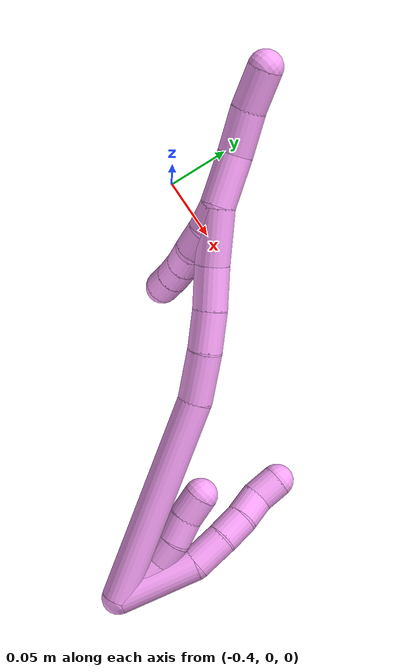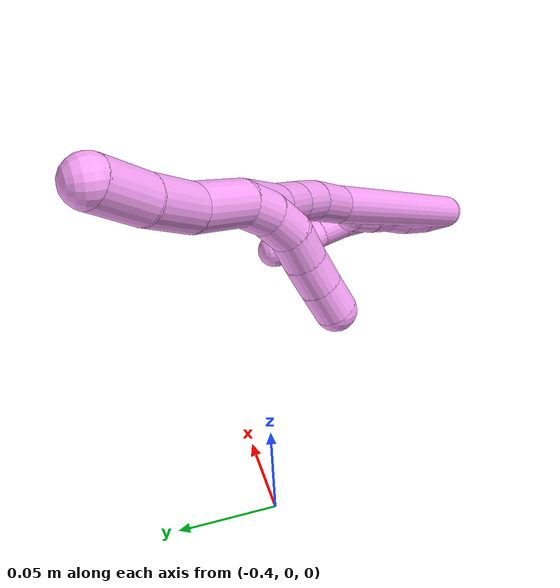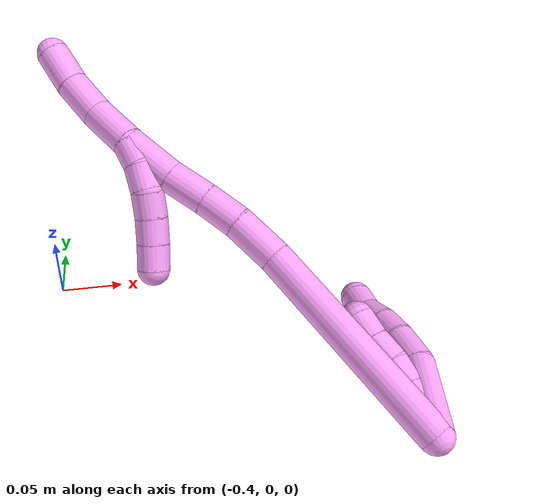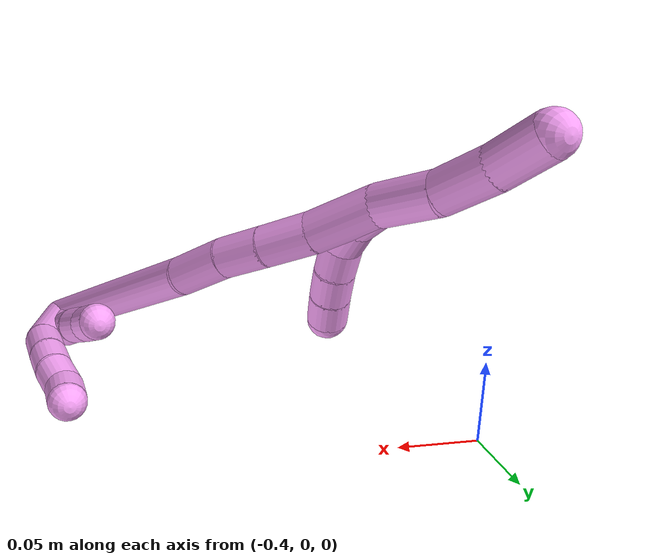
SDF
<sdf version="1.7">
 <world name="default">
  <model name="4">
   <static>0</static>
   <link name="4">
    <collision name="collision-cylinder-e_1_2_8">
     <pose>0.002928 -0.01005 -0.028716 2.80493 0.095944 0.550668</pose>
     <geometry><cylinder><radius>0.0125</radius><length>0.061129</length></cylinder></geometry>
     <surface>
      <friction><ode><mu>1.16</mu><mu2>1.16</mu2><slip1>0</slip1><slip2>0</slip2></ode></friction>
      <contact><ode><kp>1e+06</kp><kd>1</kd><max_vel>0</max_vel><min_depth>0.001</min_depth></ode></contact>
     </surface>
    </collision>
    <visual name="visual-cylinder-e_1_2_8">
     <pose>0.002928 -0.01005 -0.028716 2.80493 0.095944 0.550668</pose>
     <geometry><cylinder><radius>0.0125</radius><length>0.061129</length></cylinder></geometry>
     <material><ambient>1 0.65098 0.996078 1</ambient></material>
    </visual>
    <collision name="collision-cylinder-e_2_8_9">
     <pose>0.004765 -0.020709 -0.071097 3.09706 -0.079573 -2.12145</pose>
     <geometry><cylinder><radius>0.0125</radius><length>0.027445</length></cylinder></geometry>
     <surface>
      <friction><ode><mu>1.16</mu><mu2>1.16</mu2><slip1>0</slip1><slip2>0</slip2></ode></friction>
      <contact><ode><kp>1e+06</kp><kd>1</kd><max_vel>0</max_vel><min_depth>0.001</min_depth></ode></contact>
     </surface>
    </collision>
    <visual name="visual-cylinder-e_2_8_9">
     <pose>0.004765 -0.020709 -0.071097 3.09706 -0.079573 -2.12145</pose>
     <geometry><cylinder><radius>0.0125</radius><length>0.027445</length></cylinder></geometry>
     <material><ambient>1 0.65098 0.996078 1</ambient></material>
    </visual>
    <collision name="collision-cylinder-e_3_9_10">
     <pose>0.001495 -0.021744 -0.095071 3.10033 -0.208218 -2.75163</pose>
     <geometry><cylinder><radius>0.0125</radius><length>0.02109</length></cylinder></geometry>
     <surface>
      <friction><ode><mu>1.16</mu><mu2>1.16</mu2><slip1>0</slip1><slip2>0</slip2></ode></friction>
      <contact><ode><kp>1e+06</kp><kd>1</kd><max_vel>0</max_vel><min_depth>0.001</min_depth></ode></contact>
     </surface>
    </collision>
    <visual name="visual-cylinder-e_3_9_10">
     <pose>0.001495 -0.021744 -0.095071 3.10033 -0.208218 -2.75163</pose>
     <geometry><cylinder><radius>0.0125</radius><length>0.02109</length></cylinder></geometry>
     <material><ambient>1 0.65098 0.996078 1</ambient></material>
    </visual>
    <collision name="collision-cylinder-e_4_10_11">
     <pose>-0.004268 -0.021785 -0.114782 -3.10078 -0.363745 2.92053</pose>
     <geometry><cylinder><radius>0.0125</radius><length>0.020138</length></cylinder></geometry>
     <surface>
      <friction><ode><mu>1.16</mu><mu2>1.16</mu2><slip1>0</slip1><slip2>0</slip2></ode></friction>
      <contact><ode><kp>1e+06</kp><kd>1</kd><max_vel>0</max_vel><min_depth>0.001</min_depth></ode></contact>
     </surface>
    </collision>
    <visual name="visual-cylinder-e_4_10_11">
     <pose>-0.004268 -0.021785 -0.114782 -3.10078 -0.363745 2.92053</pose>
     <geometry><cylinder><radius>0.0125</radius><length>0.020138</length></cylinder></geometry>
     <material><ambient>1 0.65098 0.996078 1</ambient></material>
    </visual>
    <collision name="collision-cylinder-e_5_11_6">
     <pose>-0.008459 -0.022295 -0.134225 3.05283 -0.060303 -1.19314</pose>
     <geometry><cylinder><radius>0.0125</radius><length>0.020199</length></cylinder></geometry>
     <surface>
      <friction><ode><mu>1.16</mu><mu2>1.16</mu2><slip1>0</slip1><slip2>0</slip2></ode></friction>
      <contact><ode><kp>1e+06</kp><kd>1</kd><max_vel>0</max_vel><min_depth>0.001</min_depth></ode></contact>
     </surface>
    </collision>
    <visual name="visual-cylinder-e_5_11_6">
     <pose>-0.008459 -0.022295 -0.134225 3.05283 -0.060303 -1.19314</pose>
     <geometry><cylinder><radius>0.0125</radius><length>0.020199</length></cylinder></geometry>
     <material><ambient>1 0.65098 0.996078 1</ambient></material>
    </visual>
    <collision name="collision-cylinder-e_1_2_12">
     <pose>-0.000739 -0.001037 -0.009919 3.03741 -0.073924 -1.23378</pose>
     <geometry><cylinder><radius>0.0125</radius><length>0.02</length></cylinder></geometry>
     <surface>
      <friction><ode><mu>1.16</mu><mu2>1.16</mu2><slip1>0</slip1><slip2>0</slip2></ode></friction>
      <contact><ode><kp>1e+06</kp><kd>1</kd><max_vel>0</max_vel><min_depth>0.001</min_depth></ode></contact>
     </surface>
    </collision>
    <visual name="visual-cylinder-e_1_2_12">
     <pose>-0.000739 -0.001037 -0.009919 3.03741 -0.073924 -1.23378</pose>
     <geometry><cylinder><radius>0.0125</radius><length>0.02</length></cylinder></geometry>
     <material><ambient>1 0.65098 0.996078 1</ambient></material>
    </visual>
    <collision name="collision-cylinder-e_2_12_13">
     <pose>-0.00044 -0.001727 -0.029777 -3.10671 0.103871 -2.49406</pose>
     <geometry><cylinder><radius>0.0125</radius><length>0.02</length></cylinder></geometry>
     <surface>
      <friction><ode><mu>1.16</mu><mu2>1.16</mu2><slip1>0</slip1><slip2>0</slip2></ode></friction>
      <contact><ode><kp>1e+06</kp><kd>1</kd><max_vel>0</max_vel><min_depth>0.001</min_depth></ode></contact>
     </surface>
    </collision>
    <visual name="visual-cylinder-e_2_12_13">
     <pose>-0.00044 -0.001727 -0.029777 -3.10671 0.103871 -2.49406</pose>
     <geometry><cylinder><radius>0.0125</radius><length>0.02</length></cylinder></geometry>
     <material><ambient>1 0.65098 0.996078 1</ambient></material>
    </visual>
    <collision name="collision-cylinder-e_3_13_14">
     <pose>0.003185 0.001395 -0.048969 -2.85014 0.261868 -1.4626</pose>
     <geometry><cylinder><radius>0.0125</radius><length>0.02</length></cylinder></geometry>
     <surface>
      <friction><ode><mu>1.16</mu><mu2>1.16</mu2><slip1>0</slip1><slip2>0</slip2></ode></friction>
      <contact><ode><kp>1e+06</kp><kd>1</kd><max_vel>0</max_vel><min_depth>0.001</min_depth></ode></contact>
     </surface>
    </collision>
    <visual name="visual-cylinder-e_3_13_14">
     <pose>0.003185 0.001395 -0.048969 -2.85014 0.261868 -1.4626</pose>
     <geometry><cylinder><radius>0.0125</radius><length>0.02</length></cylinder></geometry>
     <material><ambient>1 0.65098 0.996078 1</ambient></material>
    </visual>
    <collision name="collision-cylinder-e_4_14_15">
     <pose>0.007025 0.007987 -0.067379 -2.74675 0.125365 -0.608111</pose>
     <geometry><cylinder><radius>0.0125</radius><length>0.02</length></cylinder></geometry>
     <surface>
      <friction><ode><mu>1.16</mu><mu2>1.16</mu2><slip1>0</slip1><slip2>0</slip2></ode></friction>
      <contact><ode><kp>1e+06</kp><kd>1</kd><max_vel>0</max_vel><min_depth>0.001</min_depth></ode></contact>
     </surface>
    </collision>
    <visual name="visual-cylinder-e_4_14_15">
     <pose>0.007025 0.007987 -0.067379 -2.74675 0.125365 -0.608111</pose>
     <geometry><cylinder><radius>0.0125</radius><length>0.02</length></cylinder></geometry>
     <material><ambient>1 0.65098 0.996078 1</ambient></material>
    </visual>
    <collision name="collision-cylinder-e_5_15_5">
     <pose>0.010372 0.014528 -0.085927 -2.85923 0.2113 -1.28204</pose>
     <geometry><cylinder><radius>0.0125</radius><length>0.02</length></cylinder></geometry>
     <surface>
      <friction><ode><mu>1.16</mu><mu2>1.16</mu2><slip1>0</slip1><slip2>0</slip2></ode></friction>
      <contact><ode><kp>1e+06</kp><kd>1</kd><max_vel>0</max_vel><min_depth>0.001</min_depth></ode></contact>
     </surface>
    </collision>
    <visual name="visual-cylinder-e_5_15_5">
     <pose>0.010372 0.014528 -0.085927 -2.85923 0.2113 -1.28204</pose>
     <geometry><cylinder><radius>0.0125</radius><length>0.02</length></cylinder></geometry>
     <material><ambient>1 0.65098 0.996078 1</ambient></material>
    </visual>
    <collision name="collision-cylinder-e_1_2_16">
     <pose>0.013739 0.037923 -0.069217 -2.64038 0.172346 -0.650926</pose>
     <geometry><cylinder><radius>0.0125</radius><length>0.160224</length></cylinder></geometry>
     <surface>
      <friction><ode><mu>1.16</mu><mu2>1.16</mu2><slip1>0</slip1><slip2>0</slip2></ode></friction>
      <contact><ode><kp>1e+06</kp><kd>1</kd><max_vel>0</max_vel><min_depth>0.001</min_depth></ode></contact>
     </surface>
    </collision>
    <visual name="visual-cylinder-e_1_2_16">
     <pose>0.013739 0.037923 -0.069217 -2.64038 0.172346 -0.650926</pose>
     <geometry><cylinder><radius>0.0125</radius><length>0.160224</length></cylinder></geometry>
     <material><ambient>1 0.65098 0.996078 1</ambient></material>
    </visual>
    <collision name="collision-cylinder-e_2_16_17">
     <pose>0.030888 0.087322 -0.152553 -2.45907 0.185293 -0.511751</pose>
     <geometry><cylinder><radius>0.0125</radius><length>0.037024</length></cylinder></geometry>
     <surface>
      <friction><ode><mu>1.16</mu><mu2>1.16</mu2><slip1>0</slip1><slip2>0</slip2></ode></friction>
      <contact><ode><kp>1e+06</kp><kd>1</kd><max_vel>0</max_vel><min_depth>0.001</min_depth></ode></contact>
     </surface>
    </collision>
    <visual name="visual-cylinder-e_2_16_17">
     <pose>0.030888 0.087322 -0.152553 -2.45907 0.185293 -0.511751</pose>
     <geometry><cylinder><radius>0.0125</radius><length>0.037024</length></cylinder></geometry>
     <material><ambient>1 0.65098 0.996078 1</ambient></material>
    </visual>
    <collision name="collision-cylinder-e_3_17_18">
     <pose>0.035301 0.108553 -0.177789 -2.42135 0.067668 -0.179298</pose>
     <geometry><cylinder><radius>0.0125</radius><length>0.029648</length></cylinder></geometry>
     <surface>
      <friction><ode><mu>1.16</mu><mu2>1.16</mu2><slip1>0</slip1><slip2>0</slip2></ode></friction>
      <contact><ode><kp>1e+06</kp><kd>1</kd><max_vel>0</max_vel><min_depth>0.001</min_depth></ode></contact>
     </surface>
    </collision>
    <visual name="visual-cylinder-e_3_17_18">
     <pose>0.035301 0.108553 -0.177789 -2.42135 0.067668 -0.179298</pose>
     <geometry><cylinder><radius>0.0125</radius><length>0.029648</length></cylinder></geometry>
     <material><ambient>1 0.65098 0.996078 1</ambient></material>
    </visual>
    <collision name="collision-cylinder-e_4_18_19">
     <pose>0.037154 0.129642 -0.200003 -2.34565 0.053619 -0.127399</pose>
     <geometry><cylinder><radius>0.0125</radius><length>0.031769</length></cylinder></geometry>
     <surface>
      <friction><ode><mu>1.16</mu><mu2>1.16</mu2><slip1>0</slip1><slip2>0</slip2></ode></friction>
      <contact><ode><kp>1e+06</kp><kd>1</kd><max_vel>0</max_vel><min_depth>0.001</min_depth></ode></contact>
     </surface>
    </collision>
    <visual name="visual-cylinder-e_4_18_19">
     <pose>0.037154 0.129642 -0.200003 -2.34565 0.053619 -0.127399</pose>
     <geometry><cylinder><radius>0.0125</radius><length>0.031769</length></cylinder></geometry>
     <material><ambient>1 0.65098 0.996078 1</ambient></material>
    </visual>
    <collision name="collision-cylinder-e_5_19_1">
     <pose>0.04121 0.155297 -0.225653 -2.36421 0.155675 -0.376396</pose>
     <geometry><cylinder><radius>0.0125</radius><length>0.041336</length></cylinder></geometry>
     <surface>
      <friction><ode><mu>1.16</mu><mu2>1.16</mu2><slip1>0</slip1><slip2>0</slip2></ode></friction>
      <contact><ode><kp>1e+06</kp><kd>1</kd><max_vel>0</max_vel><min_depth>0.001</min_depth></ode></contact>
     </surface>
    </collision>
    <visual name="visual-cylinder-e_5_19_1">
     <pose>0.04121 0.155297 -0.225653 -2.36421 0.155675 -0.376396</pose>
     <geometry><cylinder><radius>0.0125</radius><length>0.041336</length></cylinder></geometry>
     <material><ambient>1 0.65098 0.996078 1</ambient></material>
    </visual>
    <collision name="collision-cylinder-e_1_1_20">
     <pose>0.045668 0.178767 -0.256414 -2.62773 0.067219 -0.254553</pose>
     <geometry><cylinder><radius>0.0125</radius><length>0.037306</length></cylinder></geometry>
     <surface>
      <friction><ode><mu>1.16</mu><mu2>1.16</mu2><slip1>0</slip1><slip2>0</slip2></ode></friction>
      <contact><ode><kp>1e+06</kp><kd>1</kd><max_vel>0</max_vel><min_depth>0.001</min_depth></ode></contact>
     </surface>
    </collision>
    <visual name="visual-cylinder-e_1_1_20">
     <pose>0.045668 0.178767 -0.256414 -2.62773 0.067219 -0.254553</pose>
     <geometry><cylinder><radius>0.0125</radius><length>0.037306</length></cylinder></geometry>
     <material><ambient>1 0.65098 0.996078 1</ambient></material>
    </visual>
    <collision name="collision-cylinder-e_2_20_21">
     <pose>0.050842 0.19669 -0.285468 -2.54236 0.246938 -0.763991</pose>
     <geometry><cylinder><radius>0.0125</radius><length>0.032089</length></cylinder></geometry>
     <surface>
      <friction><ode><mu>1.16</mu><mu2>1.16</mu2><slip1>0</slip1><slip2>0</slip2></ode></friction>
      <contact><ode><kp>1e+06</kp><kd>1</kd><max_vel>0</max_vel><min_depth>0.001</min_depth></ode></contact>
     </surface>
    </collision>
    <visual name="visual-cylinder-e_2_20_21">
     <pose>0.050842 0.19669 -0.285468 -2.54236 0.246938 -0.763991</pose>
     <geometry><cylinder><radius>0.0125</radius><length>0.032089</length></cylinder></geometry>
     <material><ambient>1 0.65098 0.996078 1</ambient></material>
    </visual>
    <collision name="collision-cylinder-e_3_21_4">
     <pose>0.060228 0.212619 -0.31069 -2.6174 0.365078 -1.20537</pose>
     <geometry><cylinder><radius>0.0125</radius><length>0.030604</length></cylinder></geometry>
     <surface>
      <friction><ode><mu>1.16</mu><mu2>1.16</mu2><slip1>0</slip1><slip2>0</slip2></ode></friction>
      <contact><ode><kp>1e+06</kp><kd>1</kd><max_vel>0</max_vel><min_depth>0.001</min_depth></ode></contact>
     </surface>
    </collision>
    <visual name="visual-cylinder-e_3_21_4">
     <pose>0.060228 0.212619 -0.31069 -2.6174 0.365078 -1.20537</pose>
     <geometry><cylinder><radius>0.0125</radius><length>0.030604</length></cylinder></geometry>
     <material><ambient>1 0.65098 0.996078 1</ambient></material>
    </visual>
    <collision name="collision-cylinder-e_1_1_22">
     <pose>0.040288 0.16564 -0.232012 0.452015 -0.425341 -0.099221</pose>
     <geometry><cylinder><radius>0.0125</radius><length>0.02</length></cylinder></geometry>
     <surface>
      <friction><ode><mu>1.16</mu><mu2>1.16</mu2><slip1>0</slip1><slip2>0</slip2></ode></friction>
      <contact><ode><kp>1e+06</kp><kd>1</kd><max_vel>0</max_vel><min_depth>0.001</min_depth></ode></contact>
     </surface>
    </collision>
    <visual name="visual-cylinder-e_1_1_22">
     <pose>0.040288 0.16564 -0.232012 0.452015 -0.425341 -0.099221</pose>
     <geometry><cylinder><radius>0.0125</radius><length>0.02</length></cylinder></geometry>
     <material><ambient>1 0.65098 0.996078 1</ambient></material>
    </visual>
    <collision name="collision-cylinder-e_2_22_23">
     <pose>0.029845 0.158584 -0.216703 0.408215 -0.683765 -0.147052</pose>
     <geometry><cylinder><radius>0.0125</radius><length>0.02</length></cylinder></geometry>
     <surface>
      <friction><ode><mu>1.16</mu><mu2>1.16</mu2><slip1>0</slip1><slip2>0</slip2></ode></friction>
      <contact><ode><kp>1e+06</kp><kd>1</kd><max_vel>0</max_vel><min_depth>0.001</min_depth></ode></contact>
     </surface>
    </collision>
    <visual name="visual-cylinder-e_2_22_23">
     <pose>0.029845 0.158584 -0.216703 0.408215 -0.683765 -0.147052</pose>
     <geometry><cylinder><radius>0.0125</radius><length>0.02</length></cylinder></geometry>
     <material><ambient>1 0.65098 0.996078 1</ambient></material>
    </visual>
    <collision name="collision-cylinder-e_3_23_24">
     <pose>0.015279 0.152279 -0.204947 0.607728 -0.969976 -0.327528</pose>
     <geometry><cylinder><radius>0.0125</radius><length>0.02</length></cylinder></geometry>
     <surface>
      <friction><ode><mu>1.16</mu><mu2>1.16</mu2><slip1>0</slip1><slip2>0</slip2></ode></friction>
      <contact><ode><kp>1e+06</kp><kd>1</kd><max_vel>0</max_vel><min_depth>0.001</min_depth></ode></contact>
     </surface>
    </collision>
    <visual name="visual-cylinder-e_3_23_24">
     <pose>0.015279 0.152279 -0.204947 0.607728 -0.969976 -0.327528</pose>
     <geometry><cylinder><radius>0.0125</radius><length>0.02</length></cylinder></geometry>
     <material><ambient>1 0.65098 0.996078 1</ambient></material>
    </visual>
    <collision name="collision-cylinder-e_4_24_25">
     <pose>-0.001412 0.146716 -0.195481 0.450588 -1.00511 -0.250611</pose>
     <geometry><cylinder><radius>0.0125</radius><length>0.02</length></cylinder></geometry>
     <surface>
      <friction><ode><mu>1.16</mu><mu2>1.16</mu2><slip1>0</slip1><slip2>0</slip2></ode></friction>
      <contact><ode><kp>1e+06</kp><kd>1</kd><max_vel>0</max_vel><min_depth>0.001</min_depth></ode></contact>
     </surface>
    </collision>
    <visual name="visual-cylinder-e_4_24_25">
     <pose>-0.001412 0.146716 -0.195481 0.450588 -1.00511 -0.250611</pose>
     <geometry><cylinder><radius>0.0125</radius><length>0.02</length></cylinder></geometry>
     <material><ambient>1 0.65098 0.996078 1</ambient></material>
    </visual>
    <collision name="collision-cylinder-e_5_25_3">
     <pose>-0.018377 0.142571 -0.185749 0.353644 -1.02041 -0.199334</pose>
     <geometry><cylinder><radius>0.0125</radius><length>0.02</length></cylinder></geometry>
     <surface>
      <friction><ode><mu>1.16</mu><mu2>1.16</mu2><slip1>0</slip1><slip2>0</slip2></ode></friction>
      <contact><ode><kp>1e+06</kp><kd>1</kd><max_vel>0</max_vel><min_depth>0.001</min_depth></ode></contact>
     </surface>
    </collision>
    <visual name="visual-cylinder-e_5_25_3">
     <pose>-0.018377 0.142571 -0.185749 0.353644 -1.02041 -0.199334</pose>
     <geometry><cylinder><radius>0.0125</radius><length>0.02</length></cylinder></geometry>
     <material><ambient>1 0.65098 0.996078 1</ambient></material>
    </visual>
    <collision name="collision-sphere-3">
     <pose>-0.0269 0.14076 -0.180843 0 -0 0</pose>
     <geometry><sphere><radius>0.0125</radius></sphere></geometry>
     <surface>
      <friction><ode><mu>1.16</mu><mu2>1.16</mu2><slip1>0</slip1><slip2>0</slip2></ode></friction>
      <contact><ode><kp>1e+06</kp><kd>1</kd><max_vel>0</max_vel><min_depth>0.001</min_depth></ode></contact>
     </surface>
    </collision>
    <visual name="visual-sphere-3">
     <pose>-0.0269 0.14076 -0.180843 0 -0 0</pose>
     <geometry><sphere><radius>0.0125</radius></sphere></geometry>
     <material><ambient>1 0.65098 0.996078 1</ambient></material>
    </visual>
    <collision name="collision-sphere-25">
     <pose>-0.009854 0.144382 -0.190656 0 -0 0</pose>
     <geometry><sphere><radius>0.0125</radius></sphere></geometry>
     <surface>
      <friction><ode><mu>1.16</mu><mu2>1.16</mu2><slip1>0</slip1><slip2>0</slip2></ode></friction>
      <contact><ode><kp>1e+06</kp><kd>1</kd><max_vel>0</max_vel><min_depth>0.001</min_depth></ode></contact>
     </surface>
    </collision>
    <visual name="visual-sphere-25">
     <pose>-0.009854 0.144382 -0.190656 0 -0 0</pose>
     <geometry><sphere><radius>0.0125</radius></sphere></geometry>
     <material><ambient>1 0.65098 0.996078 1</ambient></material>
    </visual>
    <collision name="collision-sphere-24">
     <pose>0.00703 0.149051 -0.200306 0 -0 0</pose>
     <geometry><sphere><radius>0.0125</radius></sphere></geometry>
     <surface>
      <friction><ode><mu>1.16</mu><mu2>1.16</mu2><slip1>0</slip1><slip2>0</slip2></ode></friction>
      <contact><ode><kp>1e+06</kp><kd>1</kd><max_vel>0</max_vel><min_depth>0.001</min_depth></ode></contact>
     </surface>
    </collision>
    <visual name="visual-sphere-24">
     <pose>0.00703 0.149051 -0.200306 0 -0 0</pose>
     <geometry><sphere><radius>0.0125</radius></sphere></geometry>
     <material><ambient>1 0.65098 0.996078 1</ambient></material>
    </visual>
    <collision name="collision-sphere-23">
     <pose>0.023528 0.155507 -0.209588 0 -0 0</pose>
     <geometry><sphere><radius>0.0125</radius></sphere></geometry>
     <surface>
      <friction><ode><mu>1.16</mu><mu2>1.16</mu2><slip1>0</slip1><slip2>0</slip2></ode></friction>
      <contact><ode><kp>1e+06</kp><kd>1</kd><max_vel>0</max_vel><min_depth>0.001</min_depth></ode></contact>
     </surface>
    </collision>
    <visual name="visual-sphere-23">
     <pose>0.023528 0.155507 -0.209588 0 -0 0</pose>
     <geometry><sphere><radius>0.0125</radius></sphere></geometry>
     <material><ambient>1 0.65098 0.996078 1</ambient></material>
    </visual>
    <collision name="collision-sphere-22">
     <pose>0.036162 0.161661 -0.223818 0 -0 0</pose>
     <geometry><sphere><radius>0.0125</radius></sphere></geometry>
     <surface>
      <friction><ode><mu>1.16</mu><mu2>1.16</mu2><slip1>0</slip1><slip2>0</slip2></ode></friction>
      <contact><ode><kp>1e+06</kp><kd>1</kd><max_vel>0</max_vel><min_depth>0.001</min_depth></ode></contact>
     </surface>
    </collision>
    <visual name="visual-sphere-22">
     <pose>0.036162 0.161661 -0.223818 0 -0 0</pose>
     <geometry><sphere><radius>0.0125</radius></sphere></geometry>
     <material><ambient>1 0.65098 0.996078 1</ambient></material>
    </visual>
    <collision name="collision-sphere-4">
     <pose>0.065691 0.219773 -0.323064 0 -0 0</pose>
     <geometry><sphere><radius>0.0125</radius></sphere></geometry>
     <surface>
      <friction><ode><mu>1.16</mu><mu2>1.16</mu2><slip1>0</slip1><slip2>0</slip2></ode></friction>
      <contact><ode><kp>1e+06</kp><kd>1</kd><max_vel>0</max_vel><min_depth>0.001</min_depth></ode></contact>
     </surface>
    </collision>
    <visual name="visual-sphere-4">
     <pose>0.065691 0.219773 -0.323064 0 -0 0</pose>
     <geometry><sphere><radius>0.0125</radius></sphere></geometry>
     <material><ambient>1 0.65098 0.996078 1</ambient></material>
    </visual>
    <collision name="collision-sphere-21">
     <pose>0.054764 0.205464 -0.298315 0 -0 0</pose>
     <geometry><sphere><radius>0.0125</radius></sphere></geometry>
     <surface>
      <friction><ode><mu>1.16</mu><mu2>1.16</mu2><slip1>0</slip1><slip2>0</slip2></ode></friction>
      <contact><ode><kp>1e+06</kp><kd>1</kd><max_vel>0</max_vel><min_depth>0.001</min_depth></ode></contact>
     </surface>
    </collision>
    <visual name="visual-sphere-21">
     <pose>0.054764 0.205464 -0.298315 0 -0 0</pose>
     <geometry><sphere><radius>0.0125</radius></sphere></geometry>
     <material><ambient>1 0.65098 0.996078 1</ambient></material>
    </visual>
    <collision name="collision-sphere-20">
     <pose>0.046921 0.187915 -0.272621 0 -0 0</pose>
     <geometry><sphere><radius>0.0125</radius></sphere></geometry>
     <surface>
      <friction><ode><mu>1.16</mu><mu2>1.16</mu2><slip1>0</slip1><slip2>0</slip2></ode></friction>
      <contact><ode><kp>1e+06</kp><kd>1</kd><max_vel>0</max_vel><min_depth>0.001</min_depth></ode></contact>
     </surface>
    </collision>
    <visual name="visual-sphere-20">
     <pose>0.046921 0.187915 -0.272621 0 -0 0</pose>
     <geometry><sphere><radius>0.0125</radius></sphere></geometry>
     <material><ambient>1 0.65098 0.996078 1</ambient></material>
    </visual>
    <collision name="collision-sphere-6">
     <pose>-0.009067 -0.023189 -0.144267 0 -0 0</pose>
     <geometry><sphere><radius>0.0125</radius></sphere></geometry>
     <surface>
      <friction><ode><mu>1.16</mu><mu2>1.16</mu2><slip1>0</slip1><slip2>0</slip2></ode></friction>
      <contact><ode><kp>1e+06</kp><kd>1</kd><max_vel>0</max_vel><min_depth>0.001</min_depth></ode></contact>
     </surface>
    </collision>
    <visual name="visual-sphere-6">
     <pose>-0.009067 -0.023189 -0.144267 0 -0 0</pose>
     <geometry><sphere><radius>0.0125</radius></sphere></geometry>
     <material><ambient>1 0.65098 0.996078 1</ambient></material>
    </visual>
    <collision name="collision-sphere-11">
     <pose>-0.00785 -0.021401 -0.124184 0 -0 0</pose>
     <geometry><sphere><radius>0.0125</radius></sphere></geometry>
     <surface>
      <friction><ode><mu>1.16</mu><mu2>1.16</mu2><slip1>0</slip1><slip2>0</slip2></ode></friction>
      <contact><ode><kp>1e+06</kp><kd>1</kd><max_vel>0</max_vel><min_depth>0.001</min_depth></ode></contact>
     </surface>
    </collision>
    <visual name="visual-sphere-11">
     <pose>-0.00785 -0.021401 -0.124184 0 -0 0</pose>
     <geometry><sphere><radius>0.0125</radius></sphere></geometry>
     <material><ambient>1 0.65098 0.996078 1</ambient></material>
    </visual>
    <collision name="collision-sphere-10">
     <pose>-0.000685 -0.022169 -0.105379 0 -0 0</pose>
     <geometry><sphere><radius>0.0125</radius></sphere></geometry>
     <surface>
      <friction><ode><mu>1.16</mu><mu2>1.16</mu2><slip1>0</slip1><slip2>0</slip2></ode></friction>
      <contact><ode><kp>1e+06</kp><kd>1</kd><max_vel>0</max_vel><min_depth>0.001</min_depth></ode></contact>
     </surface>
    </collision>
    <visual name="visual-sphere-10">
     <pose>-0.000685 -0.022169 -0.105379 0 -0 0</pose>
     <geometry><sphere><radius>0.0125</radius></sphere></geometry>
     <material><ambient>1 0.65098 0.996078 1</ambient></material>
    </visual>
    <collision name="collision-sphere-9">
     <pose>0.003674 -0.021318 -0.084763 0 -0 0</pose>
     <geometry><sphere><radius>0.0125</radius></sphere></geometry>
     <surface>
      <friction><ode><mu>1.16</mu><mu2>1.16</mu2><slip1>0</slip1><slip2>0</slip2></ode></friction>
      <contact><ode><kp>1e+06</kp><kd>1</kd><max_vel>0</max_vel><min_depth>0.001</min_depth></ode></contact>
     </surface>
    </collision>
    <visual name="visual-sphere-9">
     <pose>0.003674 -0.021318 -0.084763 0 -0 0</pose>
     <geometry><sphere><radius>0.0125</radius></sphere></geometry>
     <material><ambient>1 0.65098 0.996078 1</ambient></material>
    </visual>
    <collision name="collision-sphere-2">
     <geometry><sphere><radius>0.0125</radius></sphere></geometry>
     <surface>
      <friction><ode><mu>1.16</mu><mu2>1.16</mu2><slip1>0</slip1><slip2>0</slip2></ode></friction>
      <contact><ode><kp>1e+06</kp><kd>1</kd><max_vel>0</max_vel><min_depth>0.001</min_depth></ode></contact>
     </surface>
    </collision>
    <visual name="visual-sphere-2">
     <geometry><sphere><radius>0.0125</radius></sphere></geometry>
     <material><ambient>1 0.65098 0.996078 1</ambient></material>
    </visual>
    <collision name="collision-sphere-19">
     <pose>0.038006 0.140975 -0.2111 0 -0 0</pose>
     <geometry><sphere><radius>0.0125</radius></sphere></geometry>
     <surface>
      <friction><ode><mu>1.16</mu><mu2>1.16</mu2><slip1>0</slip1><slip2>0</slip2></ode></friction>
      <contact><ode><kp>1e+06</kp><kd>1</kd><max_vel>0</max_vel><min_depth>0.001</min_depth></ode></contact>
     </surface>
    </collision>
    <visual name="visual-sphere-19">
     <pose>0.038006 0.140975 -0.2111 0 -0 0</pose>
     <geometry><sphere><radius>0.0125</radius></sphere></geometry>
     <material><ambient>1 0.65098 0.996078 1</ambient></material>
    </visual>
    <collision name="collision-sphere-8">
     <pose>0.005856 -0.0201 -0.057432 0 -0 0</pose>
     <geometry><sphere><radius>0.0125</radius></sphere></geometry>
     <surface>
      <friction><ode><mu>1.16</mu><mu2>1.16</mu2><slip1>0</slip1><slip2>0</slip2></ode></friction>
      <contact><ode><kp>1e+06</kp><kd>1</kd><max_vel>0</max_vel><min_depth>0.001</min_depth></ode></contact>
     </surface>
    </collision>
    <visual name="visual-sphere-8">
     <pose>0.005856 -0.0201 -0.057432 0 -0 0</pose>
     <geometry><sphere><radius>0.0125</radius></sphere></geometry>
     <material><ambient>1 0.65098 0.996078 1</ambient></material>
    </visual>
    <collision name="collision-sphere-12">
     <pose>-0.001477 -0.002074 -0.019837 0 -0 0</pose>
     <geometry><sphere><radius>0.0125</radius></sphere></geometry>
     <surface>
      <friction><ode><mu>1.16</mu><mu2>1.16</mu2><slip1>0</slip1><slip2>0</slip2></ode></friction>
      <contact><ode><kp>1e+06</kp><kd>1</kd><max_vel>0</max_vel><min_depth>0.001</min_depth></ode></contact>
     </surface>
    </collision>
    <visual name="visual-sphere-12">
     <pose>-0.001477 -0.002074 -0.019837 0 -0 0</pose>
     <geometry><sphere><radius>0.0125</radius></sphere></geometry>
     <material><ambient>1 0.65098 0.996078 1</ambient></material>
    </visual>
    <collision name="collision-sphere-13">
     <pose>0.000597 -0.00138 -0.039717 0 -0 0</pose>
     <geometry><sphere><radius>0.0125</radius></sphere></geometry>
     <surface>
      <friction><ode><mu>1.16</mu><mu2>1.16</mu2><slip1>0</slip1><slip2>0</slip2></ode></friction>
      <contact><ode><kp>1e+06</kp><kd>1</kd><max_vel>0</max_vel><min_depth>0.001</min_depth></ode></contact>
     </surface>
    </collision>
    <visual name="visual-sphere-13">
     <pose>0.000597 -0.00138 -0.039717 0 -0 0</pose>
     <geometry><sphere><radius>0.0125</radius></sphere></geometry>
     <material><ambient>1 0.65098 0.996078 1</ambient></material>
    </visual>
    <collision name="collision-sphere-14">
     <pose>0.005774 0.00417 -0.058221 0 -0 0</pose>
     <geometry><sphere><radius>0.0125</radius></sphere></geometry>
     <surface>
      <friction><ode><mu>1.16</mu><mu2>1.16</mu2><slip1>0</slip1><slip2>0</slip2></ode></friction>
      <contact><ode><kp>1e+06</kp><kd>1</kd><max_vel>0</max_vel><min_depth>0.001</min_depth></ode></contact>
     </surface>
    </collision>
    <visual name="visual-sphere-14">
     <pose>0.005774 0.00417 -0.058221 0 -0 0</pose>
     <geometry><sphere><radius>0.0125</radius></sphere></geometry>
     <material><ambient>1 0.65098 0.996078 1</ambient></material>
    </visual>
    <collision name="collision-sphere-15">
     <pose>0.008275 0.011803 -0.076537 0 -0 0</pose>
     <geometry><sphere><radius>0.0125</radius></sphere></geometry>
     <surface>
      <friction><ode><mu>1.16</mu><mu2>1.16</mu2><slip1>0</slip1><slip2>0</slip2></ode></friction>
      <contact><ode><kp>1e+06</kp><kd>1</kd><max_vel>0</max_vel><min_depth>0.001</min_depth></ode></contact>
     </surface>
    </collision>
    <visual name="visual-sphere-15">
     <pose>0.008275 0.011803 -0.076537 0 -0 0</pose>
     <geometry><sphere><radius>0.0125</radius></sphere></geometry>
     <material><ambient>1 0.65098 0.996078 1</ambient></material>
    </visual>
    <collision name="collision-sphere-5">
     <pose>0.01247 0.017252 -0.095318 0 -0 0</pose>
     <geometry><sphere><radius>0.0125</radius></sphere></geometry>
     <surface>
      <friction><ode><mu>1.16</mu><mu2>1.16</mu2><slip1>0</slip1><slip2>0</slip2></ode></friction>
      <contact><ode><kp>1e+06</kp><kd>1</kd><max_vel>0</max_vel><min_depth>0.001</min_depth></ode></contact>
     </surface>
    </collision>
    <visual name="visual-sphere-5">
     <pose>0.01247 0.017252 -0.095318 0 -0 0</pose>
     <geometry><sphere><radius>0.0125</radius></sphere></geometry>
     <material><ambient>1 0.65098 0.996078 1</ambient></material>
    </visual>
    <collision name="collision-sphere-16">
     <pose>0.027477 0.075846 -0.138434 0 -0 0</pose>
     <geometry><sphere><radius>0.0125</radius></sphere></geometry>
     <surface>
      <friction><ode><mu>1.16</mu><mu2>1.16</mu2><slip1>0</slip1><slip2>0</slip2></ode></friction>
      <contact><ode><kp>1e+06</kp><kd>1</kd><max_vel>0</max_vel><min_depth>0.001</min_depth></ode></contact>
     </surface>
    </collision>
    <visual name="visual-sphere-16">
     <pose>0.027477 0.075846 -0.138434 0 -0 0</pose>
     <geometry><sphere><radius>0.0125</radius></sphere></geometry>
     <material><ambient>1 0.65098 0.996078 1</ambient></material>
    </visual>
    <collision name="collision-sphere-17">
     <pose>0.034298 0.098799 -0.166672 0 -0 0</pose>
     <geometry><sphere><radius>0.0125</radius></sphere></geometry>
     <surface>
      <friction><ode><mu>1.16</mu><mu2>1.16</mu2><slip1>0</slip1><slip2>0</slip2></ode></friction>
      <contact><ode><kp>1e+06</kp><kd>1</kd><max_vel>0</max_vel><min_depth>0.001</min_depth></ode></contact>
     </surface>
    </collision>
    <visual name="visual-sphere-17">
     <pose>0.034298 0.098799 -0.166672 0 -0 0</pose>
     <geometry><sphere><radius>0.0125</radius></sphere></geometry>
     <material><ambient>1 0.65098 0.996078 1</ambient></material>
    </visual>
    <collision name="collision-sphere-18">
     <pose>0.036303 0.118308 -0.188906 0 -0 0</pose>
     <geometry><sphere><radius>0.0125</radius></sphere></geometry>
     <surface>
      <friction><ode><mu>1.16</mu><mu2>1.16</mu2><slip1>0</slip1><slip2>0</slip2></ode></friction>
      <contact><ode><kp>1e+06</kp><kd>1</kd><max_vel>0</max_vel><min_depth>0.001</min_depth></ode></contact>
     </surface>
    </collision>
    <visual name="visual-sphere-18">
     <pose>0.036303 0.118308 -0.188906 0 -0 0</pose>
     <geometry><sphere><radius>0.0125</radius></sphere></geometry>
     <material><ambient>1 0.65098 0.996078 1</ambient></material>
    </visual>
    <collision name="collision-sphere-1">
     <pose>0.044415 0.169618 -0.240206 0 -0 0</pose>
     <geometry><sphere><radius>0.0125</radius></sphere></geometry>
     <surface>
      <friction><ode><mu>1.16</mu><mu2>1.16</mu2><slip1>0</slip1><slip2>0</slip2></ode></friction>
      <contact><ode><kp>1e+06</kp><kd>1</kd><max_vel>0</max_vel><min_depth>0.001</min_depth></ode></contact>
     </surface>
    </collision>
    <visual name="visual-sphere-1">
     <pose>0.044415 0.169618 -0.240206 0 -0 0</pose>
     <geometry><sphere><radius>0.0125</radius></sphere></geometry>
     <material><ambient>1 0.65098 0.996078 1</ambient></material>
    </visual>
    <inertial>
     <pose>0.018985 0.074349 -0.136263 0 -0 0</pose>
     <mass>0.75</mass>
     <inertia>
      <ixx>0.0001</ixx>
      <ixy>0</ixy>
      <ixz>0</ixz>
      <iyy>-0.000461</iyy>
      <iyz>0</iyz>
      <izz>-0.000279</izz>
     </inertia>
    </inertial>
   </link>
   <pose>-0.152117 -0.210464 0.020793 1.77663 -1.18788 -0.014727</pose>
  </model>
 </world>
</sdf>
